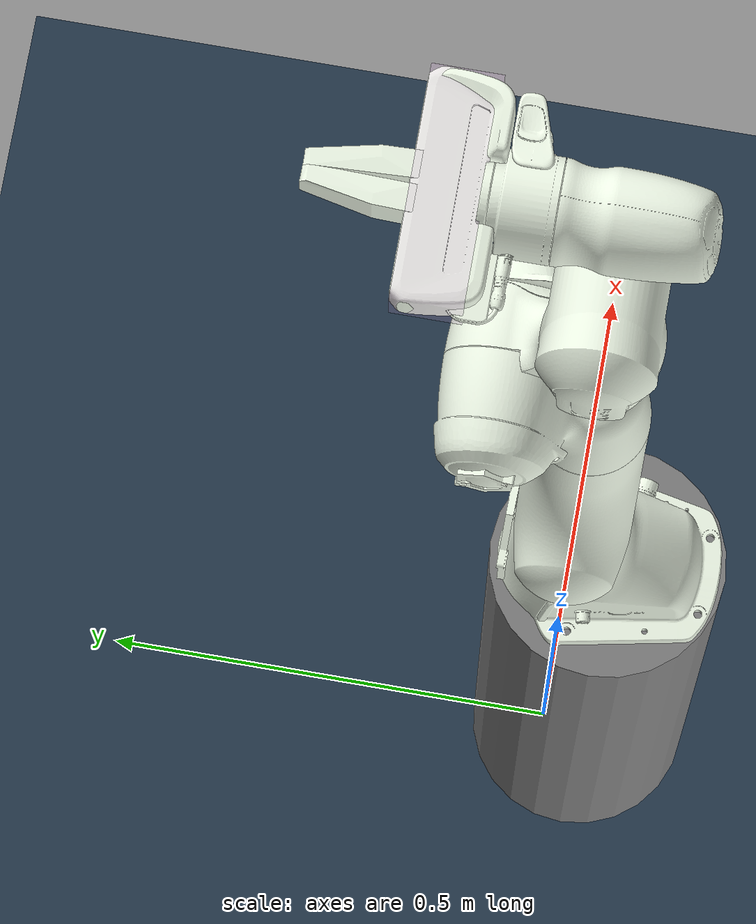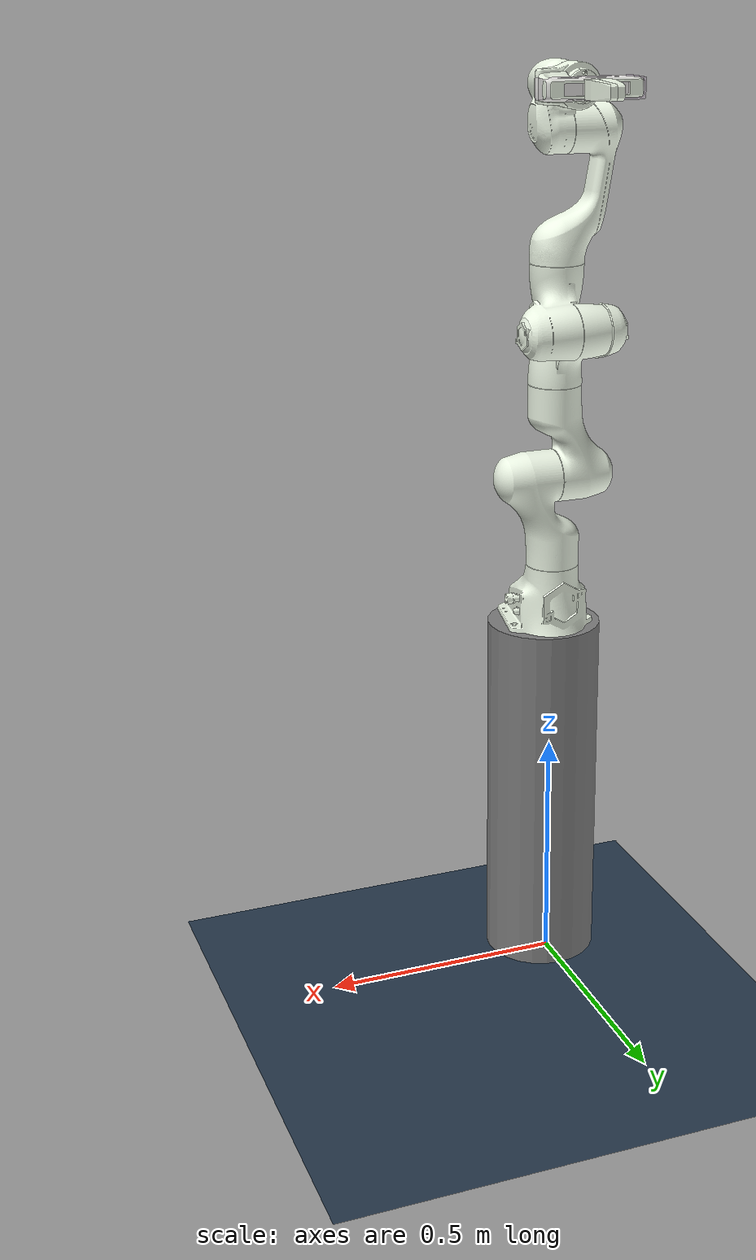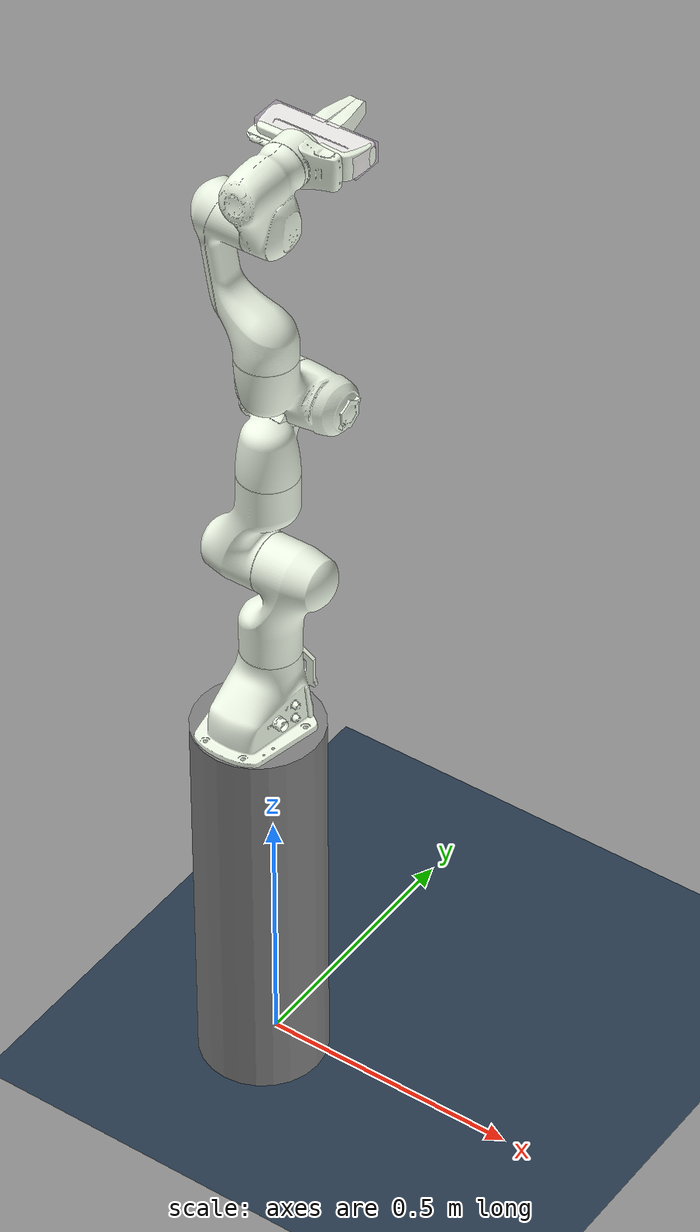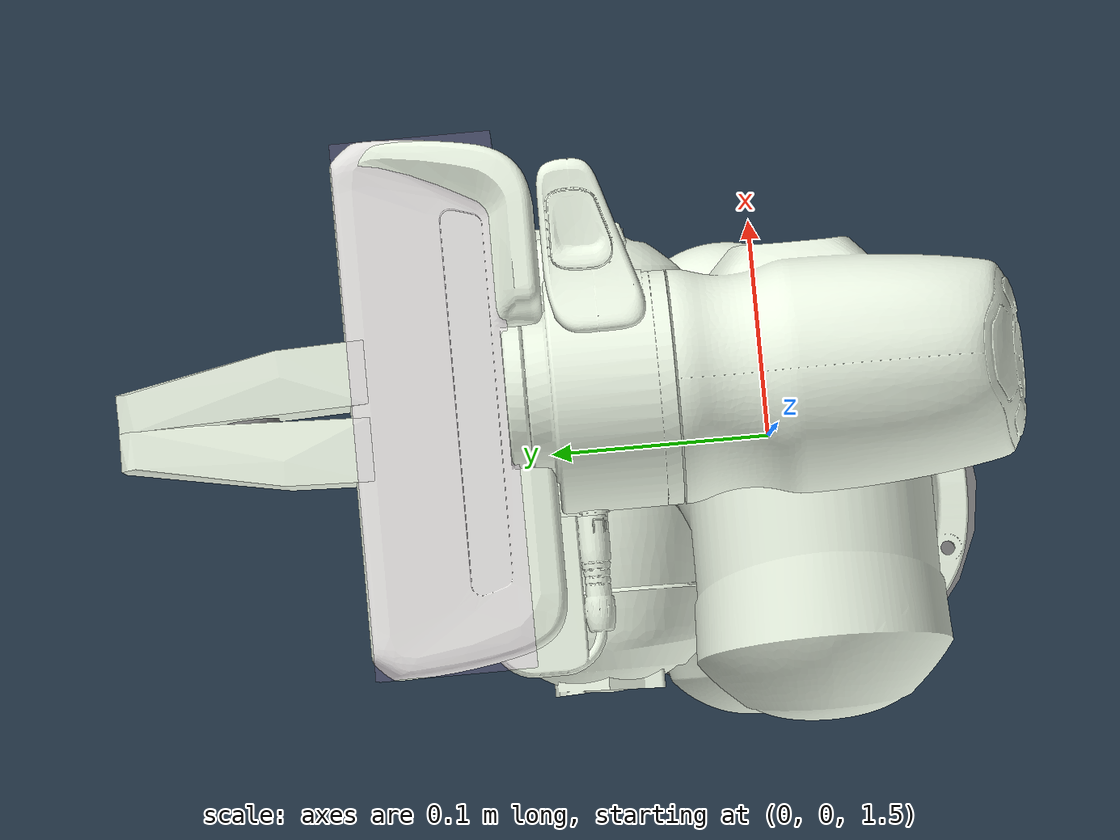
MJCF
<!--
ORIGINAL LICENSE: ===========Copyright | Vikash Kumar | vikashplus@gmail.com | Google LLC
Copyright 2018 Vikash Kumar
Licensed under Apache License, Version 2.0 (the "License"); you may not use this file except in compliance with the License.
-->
<!-- Modified from the original source code at
        1) https://github.com/vikashplus/franka
    which was originally written by Vikash Kumar and licensed under the Apache License= -->

<mujoco model="franka_panda v200">

    <include file="assets/basic_scene.xml"/>
    <include file="assets/assets.xml"/>
    <compiler meshdir=""/>

    <equality>
      <weld body1="vive_controller" body2="panda0_link7" solref="0.01 1" solimp=".25 .25 0.001"/>
    </equality>

    <worldbody>
        <!-- Mocap -->
        <body name="vive_controller" mocap="true" pos="0 0 1.895" euler="-1.57 0 -.785">
            <geom type="box" group="2" pos='0 0 .142' size="0.02 0.10 0.03" contype="0" conaffinity="0" rgba=".9 .7 .95 .2" euler="0 0 -.785"/>
        </body>

        <!-- Robot -->
        <body pos='0 0 .775' euler='0 0 1.57'>
            <geom type='cylinder' size='.120 .4' pos='-.04 0 -.4'/>
            <include file="assets/chain0.xml"/>
            <include file="assets/chain0_overlay.xml"/>
        </body>

    </worldbody>

    <include file='assets/teleop_actuator.xml'/>
</mujoco>

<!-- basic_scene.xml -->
<mujocoinclude>
	<asset>
        <texture name="texplane" type="2d" builtin="checker" rgb1=".2 .3 .4" rgb2=".1 0.15 0.2"
                width="512" height="512"/>
        <material name="MatGnd" reflectance="0.5" texture="texplane" texrepeat="1 1" texuniform="true"/>
    </asset>

    <worldbody>
        <light directional="false" diffuse=".8 .8 .8" specular="0.3 0.3 0.3" pos="1  1 3" dir="-1 -1 -3"/>
        <light directional="false" diffuse=".8 .8 .8" specular="0.3 0.3 0.3" pos="1 -1 3" dir="-1 1 -3"/>
        <light directional="false" diffuse=".8 .8 .8" specular="0.3 0.3 0.3" pos="-1 0 3" dir="1 0 -3" />
        <geom name="ground" pos="0 0 0" size="5 5 10" material="MatGnd" type="plane" contype="1" conaffinity="1"/>
    </worldbody>
</mujocoinclude>

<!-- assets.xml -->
<!-- Modified from the original source code at
        1) https://github.com/vikashplus/franka
    which was originally written by Vikash Kumar and licensed under the Apache License= -->
<mujocoinclude>
    <compiler angle="radian"/>
    <option timestep="0.002"/>
    <size nuser_actuator="5"/>

    <asset>
        <mesh name="link0_col" file="../../third_party/franka/meshes/collision/link0.stl"/>
        <mesh name="link1_col" file="../../third_party/franka/meshes/collision/link1.stl"/>
        <mesh name="link2_col" file="../../third_party/franka/meshes/collision/link2.stl"/>
        <mesh name="link3_col" file="../../third_party/franka/meshes/collision/link3.stl"/>
        <mesh name="link4_col" file="../../third_party/franka/meshes/collision/link4.stl"/>
        <mesh name="link5_col" file="../../third_party/franka/meshes/collision/link5.stl"/>
        <mesh name="link6_col" file="../../third_party/franka/meshes/collision/link6.stl"/>
        <mesh name="link7_col" file="../../third_party/franka/meshes/collision/link7.stl"/>
        <mesh name="hand_col" file="../../third_party/franka/meshes/collision/hand.stl"/>
        <mesh name="finger_col" file="../../third_party/franka/meshes/collision/finger.stl" scale='1.75 1.0 1.75'/>
        <mesh name="link0_viz" file="../../third_party/franka/meshes/visual/link0.stl"/>
        <mesh name="link1_viz" file="../../third_party/franka/meshes/visual/link1.stl"/>
        <mesh name="link2_viz" file="../../third_party/franka/meshes/visual/link2.stl"/>
        <mesh name="link3_viz" file="../../third_party/franka/meshes/visual/link3.stl"/>
        <mesh name="link4_viz" file="../../third_party/franka/meshes/visual/link4.stl"/>
        <mesh name="link5_viz" file="../../third_party/franka/meshes/visual/link5.stl"/>
        <mesh name="link6_viz" file="../../third_party/franka/meshes/visual/link6.stl"/>
        <mesh name="link7_viz" file="../../third_party/franka/meshes/visual/link7.stl"/>
        <mesh name="hand_viz" file="../../third_party/franka/meshes/visual/hand.stl"/>
        <mesh name="finger_viz" file="../../third_party/franka/meshes/collision/finger.stl" scale='1.75 1.0 1.75'/>

    </asset>

    <default>
        <default class="panda">
            <joint pos="0 0 0" axis="0 0 1" limited="true"/>
            <position forcelimited="true" ctrllimited="true" user="1002 40 2001 -0.005 0.005"/>
            <default class="panda_viz">
                <geom contype="0" conaffinity="0" group="0" type="mesh" rgba=".95 .99 .92 1" mass="0"/>
            </default>

            <default class="panda_col">
                <geom contype="1" conaffinity="1" group="3" type="mesh" rgba=".5 .6 .7 1"/>
            </default>
            <default class="panda_arm">
                <joint damping="100"/>
            </default>
             <default class="panda_forearm">
                <joint damping="10"/>
            </default>
             <default class="panda_finger">
                <joint damping="100" armature='5'/>
                <geom friction="1 0.5 0.0001" solref="0.01 1" solimp="0.8 0.9 0.001" margin="0.001" user="0" rgba="0.5 0.6 0.7 .4" contype="1" conaffinity="0" condim="6" group="3" />
                <position user="1002 40 2001 -0.0001 0.0001"/>
            </default>
        </default>

        <default class="panda_overlay">
            <joint limited="false" damping="1000" armature="1" frictionloss="10"/>
            <geom contype="0" conaffinity="0" group="2" type="mesh" rgba=".42 0.42 0.42 .5"/>
        </default>
    </default>
</mujocoinclude>

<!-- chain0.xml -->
<!-- Robot limits pulled from https://frankaemika.github.io/docs/control_parameters.html#constants -->
<!-- Modified from the original source code at
        1) https://github.com/vikashplus/franka
    which was originally written by Vikash Kumar and licensed under the Apache License= -->
<mujocoinclude>
	<body name="panda0_link0" childclass="panda" >
        <geom class="panda_viz" mesh="link0_viz"/>
        <geom class="panda_col" mesh="link0_col" mass="2.91242"/>
        <body name="panda0_link1" pos="0 0 0.333">
            <joint name="panda0_joint1" range="-2.8973 2.8973" class="panda_arm"/>
            <geom class="panda_viz" mesh="link1_viz"/>
            <geom class="panda_col" mesh="link1_col" mass="2.7063"/>
            <body name="panda0_link2" pos="0 0 0" quat="0.707107 -0.707107 0 0">
                <joint name="panda0_joint2" range="-1.7628 1.7628" class="panda_arm"/>
                <geom class="panda_viz" mesh="link2_viz"/>
                <geom class="panda_col" mesh="link2_col" mass="2.73046"/>
                <body name="panda0_link3" pos="0 -0.316 0" quat="0.707107 0.707107 0 0">
                    <joint name="panda0_joint3" range="-2.8973 2.8973" class="panda_arm"/>
                    <geom class="panda_viz" mesh="link3_viz"/>
                    <geom class="panda_col" mesh="link3_col" mass="2.04104"/>
                    <body name="panda0_link4" pos="0.0825 0 0" quat="0.707107 0.707107 0 0">
                        <joint name="panda0_joint4" range="-3.0718 -0.4" class="panda_arm"/>
                        <geom class="panda_viz" mesh="link4_viz"/>
                        <geom class="panda_col" mesh="link4_col" mass="2.08129"/>
                        <body name="panda0_link5" pos="-0.0825 0.384 0" quat="0.707107 -0.707107 0 0">
                            <joint name="panda0_joint5" range="-2.8973 2.8973" class="panda_forearm"/>
                            <geom class="panda_viz" mesh="link5_viz"/>
                            <geom class="panda_col" mesh="link5_col" mass="3.00049"/>
                            <body name="panda0_link6" pos="0 0 0" euler='1.57 0 1.57'>
                                <joint name="panda0_joint6" range="-1.6573 2.1127" class="panda_forearm"/>
                                <geom class="panda_viz" mesh="link6_viz"/>
                                <geom class="panda_col" mesh="link6_col" mass="1.3235"/>
                                <body name="panda0_link7" pos="0.088 0 0" euler='1.57 0 0.7854'>
                                    <joint name="panda0_joint7" range="-2.8973 2.8973" class="panda_forearm"/>
                                    <geom class="panda_viz" mesh="link7_viz"/>
                                    <geom class="panda_col" mesh="link7_col" mass="0.2"/>
                                    <geom pos="0 0 0.107" quat="0.92388 0 0 -0.382683" class="panda_viz" mesh="hand_viz"/>
                                    <geom pos="0 0 0.107" quat="0.92388 0 0 -0.382683" class="panda_col" mesh="hand_col" mass="0.81909"/>
                                    <site name='end_effector' pos='0 0 .210' size='0.01' euler='0 0 -0.785398'/>
                                    <body name="panda0_leftfinger" pos="0 0 0.1654" quat="0.92388 0 0 -0.382683" childclass='panda_finger'>
                                        <inertial pos="-1.57863e-05 0.0118731 0.0434103" quat="0.705868 0.0310348 -0.0314925 0.706962" mass="0.0927059" diaginertia="6.57134e-05 6.09611e-05 1.09932e-05" />
                                        <joint name="panda0_finger_joint1"  axis="0 1 0" type="slide" range="0 0.04" class="panda_finger"/>
                                        <geom class="panda_viz" mesh="finger_viz"/>
                                        <geom size="0.0070" fromto=".009 .006 .0875   -.009 .009 .0875" type="capsule" />
                                        <geom size="0.0070" fromto=".009 .009 .0875   -.009 .006 .0875" type="capsule" />

                                        <geom size="0.0075" fromto=".009 .007 .0775   -.009 .010 .0775" type="capsule" />
                                        <geom size="0.0075" fromto=".009 .010 .0775   -.009 .007 .0775" type="capsule" />

                                        <geom size="0.0082" fromto=".009 .008 .0675   -.009 .011 .0675" type="capsule" />
                                        <geom size="0.0082" fromto=".009 .011 .0675   -.009 .008 .0675" type="capsule" />

                                        <geom size="0.0090" fromto=".009 .009 .0575   -.009 .012 .0575" type="capsule" />
                                        <geom size="0.0090" fromto=".009 .012 .0575   -.009 .009 .0575" type="capsule" />

                                        <geom size="0.0100" fromto=".009 .0105 .0475   -.009 .0135 .0475" type="capsule" />
                                        <geom size="0.0100" fromto=".009 .0135 .0475   -.009 .0105 .0475" type="capsule" />

                                        <geom size="0.0110" fromto=".009 .012 .035   -.009 .015 .035" type="capsule" />
                                        <geom size="0.0110" fromto=".009 .015 .035   -.009 .012 .035" type="capsule" />

                                        <geom size="0.0185 0.0120 0.0175" pos="0 0.014 0.015" type="box" euler='.03 0 0' />

                                    </body>
                                    <body name="panda0_rightfinger" pos="0 0 0.1654" quat="0.92388 0 0 -0.382683"  childclass='panda_finger'>
                                        <inertial pos="1.57863e-05 -0.0118731 0.0434103" quat="0.705868 -0.0310348 0.0314925 0.706962" mass="0.0927059" diaginertia="6.57134e-05 6.09611e-05 1.09932e-05" />
                                        <joint name="panda0_finger_joint2" axis="0 -1 0" type="slide" range="0 0.04" class="panda_finger"/>
                                        <geom quat="0 0 0 1" class="panda_viz" mesh="finger_viz"/>
                                        <geom size="0.0070" fromto=".009 -.006 .0875   -.009 -.009 .0875" type="capsule" />
                                        <geom size="0.0070" fromto=".009 -.009 .0875   -.009 -.006 .0875" type="capsule" />

                                        <geom size="0.0075" fromto=".009 -.007 .0775   -.009 -.010 .0775" type="capsule" />
                                        <geom size="0.0075" fromto=".009 -.010 .0775   -.009 -.007 .0775" type="capsule" />

                                        <geom size="0.0082" fromto=".009 -.008 .0675   -.009 -.011 .0675" type="capsule" />
                                        <geom size="0.0082" fromto=".009 -.011 .0675   -.009 -.008 .0675" type="capsule" />

                                        <geom size="0.0090" fromto=".009 -.009 .0575   -.009 -.012 .0575" type="capsule" />
                                        <geom size="0.0090" fromto=".009 -.012 .0575   -.009 -.009 .0575" type="capsule" />

                                        <geom size="0.0100" fromto=".009 -.0105 .0475   -.009 -.0135 .0475" type="capsule" />
                                        <geom size="0.0100" fromto=".009 -.0135 .0475   -.009 -.0105 .0475" type="capsule" />

                                        <geom size="0.0110" fromto=".009 -.012 .035   -.009 -.015 .035" type="capsule" />
                                        <geom size="0.0110" fromto=".009 -.015 .035   -.009 -.012 .035" type="capsule" />

                                        <geom size="0.0185 0.0120 0.0175" pos="0 -.014 0.015" type="box" euler='-.03 0 0' />
                                    </body>
                                </body>
                            </body>
                        </body>
                    </body>
                </body>
            </body>
        </body>
    </body>
</mujocoinclude>

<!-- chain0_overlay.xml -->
<!-- Robot limits pulled from https://frankaemika.github.io/docs/control_parameters.html#constants -->
<!-- Added this new file to the original source code at
        1) https://github.com/vikashplus/franka
    which was originally written by Vikash Kumar and licensed under the Apache License= -->

<!--Copyright 2020 Google LLC-->

<!--Licensed under the Apache License, Version 2.0 (the "License");-->
<!--you may not use this file except in compliance with the License.-->
<!--You may obtain a copy of the License at-->

    <!--https://www.apache.org/licenses/LICENSE-2.0-->

<!--Unless required by applicable law or agreed to in writing, software-->
<!--distributed under the License is distributed on an "AS IS" BASIS,-->
<!--WITHOUT WARRANTIES OR CONDITIONS OF ANY KIND, either express or implied.-->
<!--See the License for the specific language governing permissions and-->
<!--limitations under the License.-->

<mujocoinclude>
	<body name="_panda0_link0" childclass="panda_overlay" >
        <geom mesh="link0_viz"/>
        <body name="_panda0_link1" pos="0 0 0.333">
            <joint name="_panda0_joint1" range="-2.8973 2.8973"/>
            <geom mesh="link1_viz"/>
            <body name="_panda0_link2" pos="0 0 0" quat="0.707107 -0.707107 0 0">
                <joint name="_panda0_joint2" range="-1.7628 1.7628"/>
                <geom mesh="link2_viz"/>
                <body name="_panda0_link3" pos="0 -0.316 0" quat="0.707107 0.707107 0 0">
                    <joint name="_panda0_joint3" range="-2.8973 2.8973"/>
                    <geom mesh="link3_viz"/>
                    <body name="_panda0_link4" pos="0.0825 0 0" quat="0.707107 0.707107 0 0">
                        <joint name="_panda0_joint4" range="-3.0718 -0.4"/>
                        <geom mesh="link4_viz"/>
                        <body name="_panda0_link5" pos="-0.0825 0.384 0" quat="0.707107 -0.707107 0 0">
                            <joint name="_panda0_joint5" range="-2.8973 2.8973"/>
                            <geom mesh="link5_viz"/>
                            <body name="_panda0_link6" pos="0 0 0" euler="1.57 0 1.57">
                                <joint name="_panda0_joint6" range="-1.6573 2.1127"/>
                                <geom mesh="link6_viz"/>
                                <body name="_panda0_link7" pos="0.088 0 0" euler="1.57 0 0.7854">
                                    <joint name="_panda0_joint7" range="-2.8973 2.8973"/>
                                    <geom mesh="link7_viz"/>
                                    <geom pos="0 0 0.107" quat="0.92388 0 0 -0.382683" mesh="hand_viz"/>
                                    <site name="_end_effector" pos="0 0 .210" size="0.01" euler="0 0 -0.785398"/>
                                    <body name="_panda0_leftfinger" pos="0 0 0.1654" quat="0.92388 0 0 -0.382683">
                                        <joint name="_panda0_finger_joint1"  axis="0 1 0" type="slide" range="0 0.04"/>
                                        <geom mesh="finger_viz"/>
                                    </body>
                                    <body name="_panda0_rightfinger" pos="0 0 0.1654" quat="0.92388 0 0 -0.382683">
                                        <joint name="_panda0_finger_joint2" axis="0 -1 0" type="slide" range="0 0.04"/>
                                        <geom quat="0 0 0 1" mesh="finger_viz"/>
                                    </body>
                                </body>
                            </body>
                        </body>
                    </body>
                </body>
            </body>
        </body>
    </body>
</mujocoinclude>

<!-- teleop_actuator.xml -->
<!-- Copied from actuator0.xml -->
<!-- Added new file to the original source code at
        1) https://github.com/vikashplus/franka
    which was originally written by Vikash Kumar and licensed under the Apache License= -->

<!--Copyright 2020 Google LLC-->

<!--Licensed under the Apache License, Version 2.0 (the "License");-->
<!--you may not use this file except in compliance with the License.-->
<!--You may obtain a copy of the License at-->

    <!--https://www.apache.org/licenses/LICENSE-2.0-->

<!--Unless required by applicable law or agreed to in writing, software-->
<!--distributed under the License is distributed on an "AS IS" BASIS,-->
<!--WITHOUT WARRANTIES OR CONDITIONS OF ANY KIND, either express or implied.-->
<!--See the License for the specific language governing permissions and-->
<!--limitations under the License.-->
<mujocoinclude>
	<actuator>
    <position name="r_gripper_finger_joint" joint="panda0_finger_joint1" class="panda_finger" kp="500" forcerange="-70 70" ctrlrange="0 0.08"/> <!-- velocity=".2" -->
    <position name="l_gripper_finger_joint" joint="panda0_finger_joint2" class="panda_finger" kp="500" forcerange="-70 70" ctrlrange="0 0.08"/> <!-- velocity=".2" -->
  </actuator>
</mujocoinclude>
